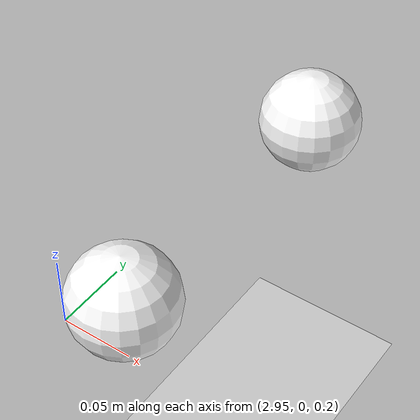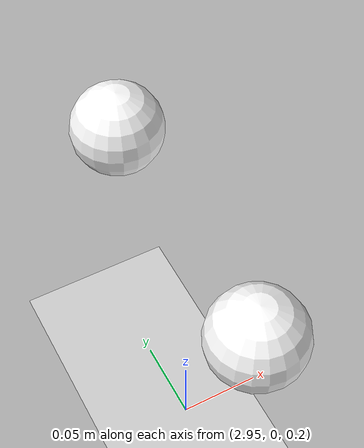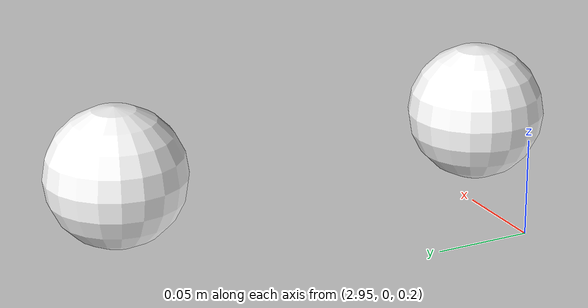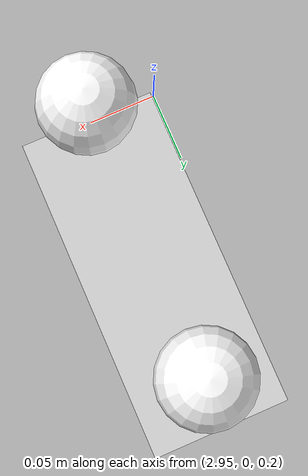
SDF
<?xml version="1.0" ?>
<sdf version="1.6">
  <world name="camera_c2_resolution">
    <scene>
      <ambient>0.7 0.7 0.7 1</ambient>
      <background>0.5 0.5 0.5 1</background>
    </scene>

    <include>
      <uri>model://sun</uri>
    </include>

    <include>
      <uri>model://ground_plane</uri>
    </include>

    <model name="sphere_a">
      <pose>3.0 0.0 0.25 0 0 0</pose>
      <static>false</static>
      <link name="link">
        <gravity>false</gravity>
        <collision name="collision">
          <geometry>
            <sphere><radius>0.035</radius></sphere>
          </geometry>
        </collision>
        <visual name="visual">
          <geometry>
            <sphere><radius>0.035</radius></sphere>
          </geometry>
          <material>
            <ambient>1 1 1 1</ambient>
            <diffuse>1 1 1 1</diffuse>
          </material>
        </visual>
      </link>
    </model>

    <model name="sphere_b">
      <pose>3.0 0.20 0.25 0 0 0</pose>
      <static>false</static>
      <link name="link">
        <gravity>false</gravity>
        <collision name="collision">
          <geometry>
            <sphere><radius>0.035</radius></sphere>
          </geometry>
        </collision>
        <visual name="visual">
          <geometry>
            <sphere><radius>0.035</radius></sphere>
          </geometry>
          <material>
            <ambient>1 1 1 1</ambient>
            <diffuse>1 1 1 1</diffuse>
          </material>
        </visual>
      </link>
    </model>
  </world>
</sdf>
